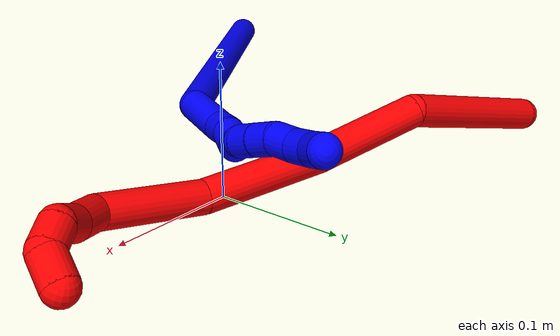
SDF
<sdf version="1.7">
 <world name="default">
  <model name="photoneo_s_sensor">
   <static>1</static>
   <pose>0 0 2 1.57079 1.57079 3.14159</pose>
   <link name="link">
    <inertial><mass>0.1</mass></inertial>
    <sensor name="sensor" type="depth">
     <update_rate>30</update_rate>
     <camera>
      <horizontal_fov>1.22</horizontal_fov>
      <image><width>1920</width><height>1200</height><format>B8G8R8</format></image>
      <clip><near>0.1</near><far>4</far></clip>
      <depth_camera><output>points</output></depth_camera>
     </camera>
     <plugin name="camera_plugin" filename="libgazebo_ros_depth_camera.so">
      <baseline>0.2</baseline>
      <alwaysOn>1</alwaysOn>
      <updateRate>0.0</updateRate>
      <cameraName>camera_ir</cameraName>
      <imageTopicName>/camera/color/image_raw</imageTopicName>
      <cameraInfoTopicName>/camera/color/camera_info</cameraInfoTopicName>
      <depthImageTopicName>/camera/depth/image_raw</depthImageTopicName>
      <depthImageCameraInfoTopicName>/camera/depth/camera_info</depthImageCameraInfoTopicName>
      <pointCloudTopicName>/camera/depth/points</pointCloudTopicName>
      <frameName>fr_optical</frameName>
      <pointCloudCutoff>0.1</pointCloudCutoff>
      <pointCloudCutoffMax>2.0</pointCloudCutoffMax>
      <distortionK1>0</distortionK1>
      <distortionK2>0</distortionK2>
      <distortionK3>0</distortionK3>
      <distortionT1>0</distortionT1>
      <distortionT2>0</distortionT2>
      <CxPrime>0</CxPrime>
      <Cx>0</Cx>
      <Cy>0</Cy>
      <focalLength>0</focalLength>
      <hackBaseline>0</hackBaseline>
     </plugin>
    </sensor>
   </link>
  </model>
  <model name="bin">
   <static>1</static>
   <link name="bottom">
    <collision name="collision-bottom">
     <pose>0 0 -0.01 0 -0 0</pose>
     <geometry><box><size>0.8 0.6 0.02</size></box></geometry>
     <surface>
      <friction><ode><mu>100</mu><mu2>100</mu2></ode></friction>
      <contact><collide_bitmask>65535</collide_bitmask></contact>
     </surface>
    </collision>
   </link>
   <link name="west_wall">
    <collision name="collision-west_wall">
     <pose>-0.41 0 0.1 0 -0 0</pose>
     <geometry><box><size>0.02 0.6 0.2</size></box></geometry>
     <surface>
      <friction><ode><mu>100</mu><mu2>100</mu2></ode></friction>
      <contact><collide_bitmask>65535</collide_bitmask></contact>
     </surface>
    </collision>
   </link>
   <link name="east_wall">
    <collision name="collision-east_wall">
     <pose>0.41 0 0.1 0 -0 0</pose>
     <geometry><box><size>0.02 0.6 0.2</size></box></geometry>
     <surface>
      <friction><ode><mu>100</mu><mu2>100</mu2></ode></friction>
      <contact><collide_bitmask>65535</collide_bitmask></contact>
     </surface>
    </collision>
   </link>
   <link name="south_wall">
    <collision name="collision-south_wall">
     <pose>0 -0.31 0.1 0 -0 0</pose>
     <geometry><box><size>0.8 0.02 0.2</size></box></geometry>
     <surface>
      <friction><ode><mu>100</mu><mu2>100</mu2></ode></friction>
      <contact><collide_bitmask>65535</collide_bitmask></contact>
     </surface>
    </collision>
   </link>
   <link name="north_wall">
    <collision name="collision-north_wall">
     <pose>0 0.31 0.1 0 -0 0</pose>
     <geometry><box><size>0.8 0.02 0.2</size></box></geometry>
     <surface>
      <friction><ode><mu>100</mu><mu2>100</mu2></ode></friction>
      <contact><collide_bitmask>65535</collide_bitmask></contact>
     </surface>
    </collision>
   </link>
  </model>
  <model name="1">
   <static>0</static>
   <link name="1">
    <collision name="collision-cylinder-e_1_1_4">
     <pose>-0.022932 0.050946 -0.133496 -2.77702 -0.159134 0.816521</pose>
     <geometry><cylinder><radius>0.0125</radius><length>0.289432</length></cylinder></geometry>
     <surface>
      <friction><ode><mu>1.16</mu><mu2>1.16</mu2><slip1>0</slip1><slip2>0</slip2></ode></friction>
      <contact><ode><kp>1e+06</kp><kd>1</kd><max_vel>0</max_vel><min_depth>0.001</min_depth></ode></contact>
     </surface>
    </collision>
    <visual name="visual-cylinder-e_1_1_4">
     <pose>-0.022932 0.050946 -0.133496 -2.77702 -0.159134 0.816521</pose>
     <geometry><cylinder><radius>0.0125</radius><length>0.289432</length></cylinder></geometry>
     <material><ambient>0 0 1 1</ambient></material>
    </visual>
    <collision name="collision-cylinder-e_2_4_5">
     <pose>-0.035477 0.109776 -0.286963 -2.76558 0.450612 -1.75595</pose>
     <geometry><cylinder><radius>0.0125</radius><length>0.047702</length></cylinder></geometry>
     <surface>
      <friction><ode><mu>1.16</mu><mu2>1.16</mu2><slip1>0</slip1><slip2>0</slip2></ode></friction>
      <contact><ode><kp>1e+06</kp><kd>1</kd><max_vel>0</max_vel><min_depth>0.001</min_depth></ode></contact>
     </surface>
    </collision>
    <visual name="visual-cylinder-e_2_4_5">
     <pose>-0.035477 0.109776 -0.286963 -2.76558 0.450612 -1.75595</pose>
     <geometry><cylinder><radius>0.0125</radius><length>0.047702</length></cylinder></geometry>
     <material><ambient>0 0 1 1</ambient></material>
    </visual>
    <collision name="collision-cylinder-e_3_5_6">
     <pose>-0.021818 0.11973 -0.316523 -2.92908 0.321829 -1.97892</pose>
     <geometry><cylinder><radius>0.0125</radius><length>0.020684</length></cylinder></geometry>
     <surface>
      <friction><ode><mu>1.16</mu><mu2>1.16</mu2><slip1>0</slip1><slip2>0</slip2></ode></friction>
      <contact><ode><kp>1e+06</kp><kd>1</kd><max_vel>0</max_vel><min_depth>0.001</min_depth></ode></contact>
     </surface>
    </collision>
    <visual name="visual-cylinder-e_3_5_6">
     <pose>-0.021818 0.11973 -0.316523 -2.92908 0.321829 -1.97892</pose>
     <geometry><cylinder><radius>0.0125</radius><length>0.020684</length></cylinder></geometry>
     <material><ambient>0 0 1 1</ambient></material>
    </visual>
    <collision name="collision-cylinder-e_4_6_7">
     <pose>-0.016069 0.126572 -0.335562 -2.67384 0.229915 -0.902623</pose>
     <geometry><cylinder><radius>0.0125</radius><length>0.021742</length></cylinder></geometry>
     <surface>
      <friction><ode><mu>1.16</mu><mu2>1.16</mu2><slip1>0</slip1><slip2>0</slip2></ode></friction>
      <contact><ode><kp>1e+06</kp><kd>1</kd><max_vel>0</max_vel><min_depth>0.001</min_depth></ode></contact>
     </surface>
    </collision>
    <visual name="visual-cylinder-e_4_6_7">
     <pose>-0.016069 0.126572 -0.335562 -2.67384 0.229915 -0.902623</pose>
     <geometry><cylinder><radius>0.0125</radius><length>0.021742</length></cylinder></geometry>
     <material><ambient>0 0 1 1</ambient></material>
    </visual>
    <collision name="collision-cylinder-e_5_7_8">
     <pose>-0.012726 0.129906 -0.354961 2.99803 0.085898 1.07739</pose>
     <geometry><cylinder><radius>0.0125</radius><length>0.020183</length></cylinder></geometry>
     <surface>
      <friction><ode><mu>1.16</mu><mu2>1.16</mu2><slip1>0</slip1><slip2>0</slip2></ode></friction>
      <contact><ode><kp>1e+06</kp><kd>1</kd><max_vel>0</max_vel><min_depth>0.001</min_depth></ode></contact>
     </surface>
    </collision>
    <visual name="visual-cylinder-e_5_7_8">
     <pose>-0.012726 0.129906 -0.354961 2.99803 0.085898 1.07739</pose>
     <geometry><cylinder><radius>0.0125</radius><length>0.020183</length></cylinder></geometry>
     <material><ambient>0 0 1 1</ambient></material>
    </visual>
    <collision name="collision-cylinder-e_6_8_9">
     <pose>-0.006566 0.127258 -0.373424 3.00046 0.551915 2.65237</pose>
     <geometry><cylinder><radius>0.0125</radius><length>0.020194</length></cylinder></geometry>
     <surface>
      <friction><ode><mu>1.16</mu><mu2>1.16</mu2><slip1>0</slip1><slip2>0</slip2></ode></friction>
      <contact><ode><kp>1e+06</kp><kd>1</kd><max_vel>0</max_vel><min_depth>0.001</min_depth></ode></contact>
     </surface>
    </collision>
    <visual name="visual-cylinder-e_6_8_9">
     <pose>-0.006566 0.127258 -0.373424 3.00046 0.551915 2.65237</pose>
     <geometry><cylinder><radius>0.0125</radius><length>0.020194</length></cylinder></geometry>
     <material><ambient>0 0 1 1</ambient></material>
    </visual>
    <collision name="collision-cylinder-e_7_9_10">
     <pose>0.0045 0.124836 -0.390039 2.99302 0.61375 2.68025</pose>
     <geometry><cylinder><radius>0.0125</radius><length>0.020044</length></cylinder></geometry>
     <surface>
      <friction><ode><mu>1.16</mu><mu2>1.16</mu2><slip1>0</slip1><slip2>0</slip2></ode></friction>
      <contact><ode><kp>1e+06</kp><kd>1</kd><max_vel>0</max_vel><min_depth>0.001</min_depth></ode></contact>
     </surface>
    </collision>
    <visual name="visual-cylinder-e_7_9_10">
     <pose>0.0045 0.124836 -0.390039 2.99302 0.61375 2.68025</pose>
     <geometry><cylinder><radius>0.0125</radius><length>0.020044</length></cylinder></geometry>
     <material><ambient>0 0 1 1</ambient></material>
    </visual>
    <collision name="collision-cylinder-e_8_10_11">
     <pose>0.016633 0.125259 -0.405693 -2.92821 0.688797 -2.56128</pose>
     <geometry><cylinder><radius>0.0125</radius><length>0.020017</length></cylinder></geometry>
     <surface>
      <friction><ode><mu>1.16</mu><mu2>1.16</mu2><slip1>0</slip1><slip2>0</slip2></ode></friction>
      <contact><ode><kp>1e+06</kp><kd>1</kd><max_vel>0</max_vel><min_depth>0.001</min_depth></ode></contact>
     </surface>
    </collision>
    <visual name="visual-cylinder-e_8_10_11">
     <pose>0.016633 0.125259 -0.405693 -2.92821 0.688797 -2.56128</pose>
     <geometry><cylinder><radius>0.0125</radius><length>0.020017</length></cylinder></geometry>
     <material><ambient>0 0 1 1</ambient></material>
    </visual>
    <collision name="collision-cylinder-e_9_11_12">
     <pose>0.027886 0.127547 -0.421943 -3.06688 0.511095 -2.85742</pose>
     <geometry><cylinder><radius>0.0125</radius><length>0.020002</length></cylinder></geometry>
     <surface>
      <friction><ode><mu>1.16</mu><mu2>1.16</mu2><slip1>0</slip1><slip2>0</slip2></ode></friction>
      <contact><ode><kp>1e+06</kp><kd>1</kd><max_vel>0</max_vel><min_depth>0.001</min_depth></ode></contact>
     </surface>
    </collision>
    <visual name="visual-cylinder-e_9_11_12">
     <pose>0.027886 0.127547 -0.421943 -3.06688 0.511095 -2.85742</pose>
     <geometry><cylinder><radius>0.0125</radius><length>0.020002</length></cylinder></geometry>
     <material><ambient>0 0 1 1</ambient></material>
    </visual>
    <collision name="collision-cylinder-e_10_12_2">
     <pose>0.034927 0.128348 -0.440407 -3.1262 0.216591 -3.00026</pose>
     <geometry><cylinder><radius>0.0125</radius><length>0.020001</length></cylinder></geometry>
     <surface>
      <friction><ode><mu>1.16</mu><mu2>1.16</mu2><slip1>0</slip1><slip2>0</slip2></ode></friction>
      <contact><ode><kp>1e+06</kp><kd>1</kd><max_vel>0</max_vel><min_depth>0.001</min_depth></ode></contact>
     </surface>
    </collision>
    <visual name="visual-cylinder-e_10_12_2">
     <pose>0.034927 0.128348 -0.440407 -3.1262 0.216591 -3.00026</pose>
     <geometry><cylinder><radius>0.0125</radius><length>0.020001</length></cylinder></geometry>
     <material><ambient>0 0 1 1</ambient></material>
    </visual>
    <collision name="collision-sphere-2">
     <pose>0.037076 0.128498 -0.450172 0 -0 0</pose>
     <geometry><sphere><radius>0.0125</radius></sphere></geometry>
     <surface>
      <friction><ode><mu>1.16</mu><mu2>1.16</mu2><slip1>0</slip1><slip2>0</slip2></ode></friction>
      <contact><ode><kp>1e+06</kp><kd>1</kd><max_vel>0</max_vel><min_depth>0.001</min_depth></ode></contact>
     </surface>
    </collision>
    <visual name="visual-sphere-2">
     <pose>0.037076 0.128498 -0.450172 0 -0 0</pose>
     <geometry><sphere><radius>0.0125</radius></sphere></geometry>
     <material><ambient>0 0 1 1</ambient></material>
    </visual>
    <collision name="collision-sphere-12">
     <pose>0.032778 0.128198 -0.430641 0 -0 0</pose>
     <geometry><sphere><radius>0.0125</radius></sphere></geometry>
     <surface>
      <friction><ode><mu>1.16</mu><mu2>1.16</mu2><slip1>0</slip1><slip2>0</slip2></ode></friction>
      <contact><ode><kp>1e+06</kp><kd>1</kd><max_vel>0</max_vel><min_depth>0.001</min_depth></ode></contact>
     </surface>
    </collision>
    <visual name="visual-sphere-12">
     <pose>0.032778 0.128198 -0.430641 0 -0 0</pose>
     <geometry><sphere><radius>0.0125</radius></sphere></geometry>
     <material><ambient>0 0 1 1</ambient></material>
    </visual>
    <collision name="collision-sphere-11">
     <pose>0.022994 0.126896 -0.413244 0 -0 0</pose>
     <geometry><sphere><radius>0.0125</radius></sphere></geometry>
     <surface>
      <friction><ode><mu>1.16</mu><mu2>1.16</mu2><slip1>0</slip1><slip2>0</slip2></ode></friction>
      <contact><ode><kp>1e+06</kp><kd>1</kd><max_vel>0</max_vel><min_depth>0.001</min_depth></ode></contact>
     </surface>
    </collision>
    <visual name="visual-sphere-11">
     <pose>0.022994 0.126896 -0.413244 0 -0 0</pose>
     <geometry><sphere><radius>0.0125</radius></sphere></geometry>
     <material><ambient>0 0 1 1</ambient></material>
    </visual>
    <collision name="collision-sphere-10">
     <pose>0.010272 0.123623 -0.398141 0 -0 0</pose>
     <geometry><sphere><radius>0.0125</radius></sphere></geometry>
     <surface>
      <friction><ode><mu>1.16</mu><mu2>1.16</mu2><slip1>0</slip1><slip2>0</slip2></ode></friction>
      <contact><ode><kp>1e+06</kp><kd>1</kd><max_vel>0</max_vel><min_depth>0.001</min_depth></ode></contact>
     </surface>
    </collision>
    <visual name="visual-sphere-10">
     <pose>0.010272 0.123623 -0.398141 0 -0 0</pose>
     <geometry><sphere><radius>0.0125</radius></sphere></geometry>
     <material><ambient>0 0 1 1</ambient></material>
    </visual>
    <collision name="collision-sphere-9">
     <pose>-0.001272 0.126048 -0.381936 0 -0 0</pose>
     <geometry><sphere><radius>0.0125</radius></sphere></geometry>
     <surface>
      <friction><ode><mu>1.16</mu><mu2>1.16</mu2><slip1>0</slip1><slip2>0</slip2></ode></friction>
      <contact><ode><kp>1e+06</kp><kd>1</kd><max_vel>0</max_vel><min_depth>0.001</min_depth></ode></contact>
     </surface>
    </collision>
    <visual name="visual-sphere-9">
     <pose>-0.001272 0.126048 -0.381936 0 -0 0</pose>
     <geometry><sphere><radius>0.0125</radius></sphere></geometry>
     <material><ambient>0 0 1 1</ambient></material>
    </visual>
    <collision name="collision-sphere-4">
     <pose>-0.045864 0.101892 -0.266993 0 -0 0</pose>
     <geometry><sphere><radius>0.0125</radius></sphere></geometry>
     <surface>
      <friction><ode><mu>1.16</mu><mu2>1.16</mu2><slip1>0</slip1><slip2>0</slip2></ode></friction>
      <contact><ode><kp>1e+06</kp><kd>1</kd><max_vel>0</max_vel><min_depth>0.001</min_depth></ode></contact>
     </surface>
    </collision>
    <visual name="visual-sphere-4">
     <pose>-0.045864 0.101892 -0.266993 0 -0 0</pose>
     <geometry><sphere><radius>0.0125</radius></sphere></geometry>
     <material><ambient>0 0 1 1</ambient></material>
    </visual>
    <collision name="collision-sphere-1">
     <geometry><sphere><radius>0.0125</radius></sphere></geometry>
     <surface>
      <friction><ode><mu>1.16</mu><mu2>1.16</mu2><slip1>0</slip1><slip2>0</slip2></ode></friction>
      <contact><ode><kp>1e+06</kp><kd>1</kd><max_vel>0</max_vel><min_depth>0.001</min_depth></ode></contact>
     </surface>
    </collision>
    <visual name="visual-sphere-1">
     <geometry><sphere><radius>0.0125</radius></sphere></geometry>
     <material><ambient>0 0 1 1</ambient></material>
    </visual>
    <collision name="collision-sphere-8">
     <pose>-0.01186 0.128467 -0.364912 0 -0 0</pose>
     <geometry><sphere><radius>0.0125</radius></sphere></geometry>
     <surface>
      <friction><ode><mu>1.16</mu><mu2>1.16</mu2><slip1>0</slip1><slip2>0</slip2></ode></friction>
      <contact><ode><kp>1e+06</kp><kd>1</kd><max_vel>0</max_vel><min_depth>0.001</min_depth></ode></contact>
     </surface>
    </collision>
    <visual name="visual-sphere-8">
     <pose>-0.01186 0.128467 -0.364912 0 -0 0</pose>
     <geometry><sphere><radius>0.0125</radius></sphere></geometry>
     <material><ambient>0 0 1 1</ambient></material>
    </visual>
    <collision name="collision-sphere-5">
     <pose>-0.025089 0.117661 -0.306933 0 -0 0</pose>
     <geometry><sphere><radius>0.0125</radius></sphere></geometry>
     <surface>
      <friction><ode><mu>1.16</mu><mu2>1.16</mu2><slip1>0</slip1><slip2>0</slip2></ode></friction>
      <contact><ode><kp>1e+06</kp><kd>1</kd><max_vel>0</max_vel><min_depth>0.001</min_depth></ode></contact>
     </surface>
    </collision>
    <visual name="visual-sphere-5">
     <pose>-0.025089 0.117661 -0.306933 0 -0 0</pose>
     <geometry><sphere><radius>0.0125</radius></sphere></geometry>
     <material><ambient>0 0 1 1</ambient></material>
    </visual>
    <collision name="collision-sphere-6">
     <pose>-0.018547 0.121799 -0.326114 0 -0 0</pose>
     <geometry><sphere><radius>0.0125</radius></sphere></geometry>
     <surface>
      <friction><ode><mu>1.16</mu><mu2>1.16</mu2><slip1>0</slip1><slip2>0</slip2></ode></friction>
      <contact><ode><kp>1e+06</kp><kd>1</kd><max_vel>0</max_vel><min_depth>0.001</min_depth></ode></contact>
     </surface>
    </collision>
    <visual name="visual-sphere-6">
     <pose>-0.018547 0.121799 -0.326114 0 -0 0</pose>
     <geometry><sphere><radius>0.0125</radius></sphere></geometry>
     <material><ambient>0 0 1 1</ambient></material>
    </visual>
    <collision name="collision-sphere-7">
     <pose>-0.013592 0.131344 -0.34501 0 -0 0</pose>
     <geometry><sphere><radius>0.0125</radius></sphere></geometry>
     <surface>
      <friction><ode><mu>1.16</mu><mu2>1.16</mu2><slip1>0</slip1><slip2>0</slip2></ode></friction>
      <contact><ode><kp>1e+06</kp><kd>1</kd><max_vel>0</max_vel><min_depth>0.001</min_depth></ode></contact>
     </surface>
    </collision>
    <visual name="visual-sphere-7">
     <pose>-0.013592 0.131344 -0.34501 0 -0 0</pose>
     <geometry><sphere><radius>0.0125</radius></sphere></geometry>
     <material><ambient>0 0 1 1</ambient></material>
    </visual>
    <inertial>
     <pose>-0.01568 0.08106 -0.228123 0 -0 0</pose>
     <mass>0.5</mass>
     <inertia>
      <ixx>0.002821</ixx>
      <ixy>0</ixy>
      <ixz>0</ixz>
      <iyy>0.000254</iyy>
      <iyz>0</iyz>
      <izz>-0.000442</izz>
     </inertia>
    </inertial>
   </link>
   <pose>-0.319661 -0.262077 0.012492 -1.95477 0.185351 2.30877</pose>
  </model>
  <model name="2">
   <static>0</static>
   <link name="2">
    <collision name="collision-cylinder-e_1_1_4">
     <pose>0.067022 -0.017143 0.006662 1.20014 1.30297 0.961819</pose>
     <geometry><cylinder><radius>0.0125</radius><length>0.138999</length></cylinder></geometry>
     <surface>
      <friction><ode><mu>1.16</mu><mu2>1.16</mu2><slip1>0</slip1><slip2>0</slip2></ode></friction>
      <contact><ode><kp>1e+06</kp><kd>1</kd><max_vel>0</max_vel><min_depth>0.001</min_depth></ode></contact>
     </surface>
    </collision>
    <visual name="visual-cylinder-e_1_1_4">
     <pose>0.067022 -0.017143 0.006662 1.20014 1.30297 0.961819</pose>
     <geometry><cylinder><radius>0.0125</radius><length>0.138999</length></cylinder></geometry>
     <material><ambient>1 0 0 1</ambient></material>
    </visual>
    <collision name="collision-cylinder-e_2_4_5">
     <pose>0.169961 -0.045773 -0.005304 2.58901 1.02355 2.20663</pose>
     <geometry><cylinder><radius>0.0125</radius><length>0.084119</length></cylinder></geometry>
     <surface>
      <friction><ode><mu>1.16</mu><mu2>1.16</mu2><slip1>0</slip1><slip2>0</slip2></ode></friction>
      <contact><ode><kp>1e+06</kp><kd>1</kd><max_vel>0</max_vel><min_depth>0.001</min_depth></ode></contact>
     </surface>
    </collision>
    <visual name="visual-cylinder-e_2_4_5">
     <pose>0.169961 -0.045773 -0.005304 2.58901 1.02355 2.20663</pose>
     <geometry><cylinder><radius>0.0125</radius><length>0.084119</length></cylinder></geometry>
     <material><ambient>1 0 0 1</ambient></material>
    </visual>
    <collision name="collision-cylinder-e_3_5_6">
     <pose>0.247868 -0.070905 -0.038327 2.38294 1.12952 2.01842</pose>
     <geometry><cylinder><radius>0.0125</radius><length>0.092877</length></cylinder></geometry>
     <surface>
      <friction><ode><mu>1.16</mu><mu2>1.16</mu2><slip1>0</slip1><slip2>0</slip2></ode></friction>
      <contact><ode><kp>1e+06</kp><kd>1</kd><max_vel>0</max_vel><min_depth>0.001</min_depth></ode></contact>
     </surface>
    </collision>
    <visual name="visual-cylinder-e_3_5_6">
     <pose>0.247868 -0.070905 -0.038327 2.38294 1.12952 2.01842</pose>
     <geometry><cylinder><radius>0.0125</radius><length>0.092877</length></cylinder></geometry>
     <material><ambient>1 0 0 1</ambient></material>
    </visual>
    <collision name="collision-cylinder-e_4_6_7">
     <pose>0.328749 -0.096379 -0.054747 1.74035 1.27147 1.43767</pose>
     <geometry><cylinder><radius>0.0125</radius><length>0.081401</length></cylinder></geometry>
     <surface>
      <friction><ode><mu>1.16</mu><mu2>1.16</mu2><slip1>0</slip1><slip2>0</slip2></ode></friction>
      <contact><ode><kp>1e+06</kp><kd>1</kd><max_vel>0</max_vel><min_depth>0.001</min_depth></ode></contact>
     </surface>
    </collision>
    <visual name="visual-cylinder-e_4_6_7">
     <pose>0.328749 -0.096379 -0.054747 1.74035 1.27147 1.43767</pose>
     <geometry><cylinder><radius>0.0125</radius><length>0.081401</length></cylinder></geometry>
     <material><ambient>1 0 0 1</ambient></material>
    </visual>
    <collision name="collision-cylinder-e_5_7_8">
     <pose>0.382092 -0.103239 -0.052442 -0.854153 1.1429 -0.569361</pose>
     <geometry><cylinder><radius>0.0125</radius><length>0.031769</length></cylinder></geometry>
     <surface>
      <friction><ode><mu>1.16</mu><mu2>1.16</mu2><slip1>0</slip1><slip2>0</slip2></ode></friction>
      <contact><ode><kp>1e+06</kp><kd>1</kd><max_vel>0</max_vel><min_depth>0.001</min_depth></ode></contact>
     </surface>
    </collision>
    <visual name="visual-cylinder-e_5_7_8">
     <pose>0.382092 -0.103239 -0.052442 -0.854153 1.1429 -0.569361</pose>
     <geometry><cylinder><radius>0.0125</radius><length>0.031769</length></cylinder></geometry>
     <material><ambient>1 0 0 1</ambient></material>
    </visual>
    <collision name="collision-cylinder-e_6_8_9">
     <pose>0.407235 -0.094986 -0.042262 -0.511318 1.01041 -0.287137</pose>
     <geometry><cylinder><radius>0.0125</radius><length>0.025243</length></cylinder></geometry>
     <surface>
      <friction><ode><mu>1.16</mu><mu2>1.16</mu2><slip1>0</slip1><slip2>0</slip2></ode></friction>
      <contact><ode><kp>1e+06</kp><kd>1</kd><max_vel>0</max_vel><min_depth>0.001</min_depth></ode></contact>
     </surface>
    </collision>
    <visual name="visual-cylinder-e_6_8_9">
     <pose>0.407235 -0.094986 -0.042262 -0.511318 1.01041 -0.287137</pose>
     <geometry><cylinder><radius>0.0125</radius><length>0.025243</length></cylinder></geometry>
     <material><ambient>1 0 0 1</ambient></material>
    </visual>
    <collision name="collision-cylinder-e_7_9_10">
     <pose>0.42667 -0.085641 -0.038707 -1.93278 0.932846 -1.25986</pose>
     <geometry><cylinder><radius>0.0125</radius><length>0.021769</length></cylinder></geometry>
     <surface>
      <friction><ode><mu>1.16</mu><mu2>1.16</mu2><slip1>0</slip1><slip2>0</slip2></ode></friction>
      <contact><ode><kp>1e+06</kp><kd>1</kd><max_vel>0</max_vel><min_depth>0.001</min_depth></ode></contact>
     </surface>
    </collision>
    <visual name="visual-cylinder-e_7_9_10">
     <pose>0.42667 -0.085641 -0.038707 -1.93278 0.932846 -1.25986</pose>
     <geometry><cylinder><radius>0.0125</radius><length>0.021769</length></cylinder></geometry>
     <material><ambient>1 0 0 1</ambient></material>
    </visual>
    <collision name="collision-cylinder-e_8_10_2">
     <pose>0.437637 -0.068612 -0.045085 -1.92711 0.187806 -0.269449</pose>
     <geometry><cylinder><radius>0.0125</radius><length>0.023823</length></cylinder></geometry>
     <surface>
      <friction><ode><mu>1.16</mu><mu2>1.16</mu2><slip1>0</slip1><slip2>0</slip2></ode></friction>
      <contact><ode><kp>1e+06</kp><kd>1</kd><max_vel>0</max_vel><min_depth>0.001</min_depth></ode></contact>
     </surface>
    </collision>
    <visual name="visual-cylinder-e_8_10_2">
     <pose>0.437637 -0.068612 -0.045085 -1.92711 0.187806 -0.269449</pose>
     <geometry><cylinder><radius>0.0125</radius><length>0.023823</length></cylinder></geometry>
     <material><ambient>1 0 0 1</ambient></material>
    </visual>
    <collision name="collision-sphere-2">
     <pose>0.439861 -0.057645 -0.049167 0 -0 0</pose>
     <geometry><sphere><radius>0.0125</radius></sphere></geometry>
     <surface>
      <friction><ode><mu>1.16</mu><mu2>1.16</mu2><slip1>0</slip1><slip2>0</slip2></ode></friction>
      <contact><ode><kp>1e+06</kp><kd>1</kd><max_vel>0</max_vel><min_depth>0.001</min_depth></ode></contact>
     </surface>
    </collision>
    <visual name="visual-sphere-2">
     <pose>0.439861 -0.057645 -0.049167 0 -0 0</pose>
     <geometry><sphere><radius>0.0125</radius></sphere></geometry>
     <material><ambient>1 0 0 1</ambient></material>
    </visual>
    <collision name="collision-sphere-10">
     <pose>0.435413 -0.079579 -0.041003 0 -0 0</pose>
     <geometry><sphere><radius>0.0125</radius></sphere></geometry>
     <surface>
      <friction><ode><mu>1.16</mu><mu2>1.16</mu2><slip1>0</slip1><slip2>0</slip2></ode></friction>
      <contact><ode><kp>1e+06</kp><kd>1</kd><max_vel>0</max_vel><min_depth>0.001</min_depth></ode></contact>
     </surface>
    </collision>
    <visual name="visual-sphere-10">
     <pose>0.435413 -0.079579 -0.041003 0 -0 0</pose>
     <geometry><sphere><radius>0.0125</radius></sphere></geometry>
     <material><ambient>1 0 0 1</ambient></material>
    </visual>
    <collision name="collision-sphere-9">
     <pose>0.417926 -0.091703 -0.036412 0 -0 0</pose>
     <geometry><sphere><radius>0.0125</radius></sphere></geometry>
     <surface>
      <friction><ode><mu>1.16</mu><mu2>1.16</mu2><slip1>0</slip1><slip2>0</slip2></ode></friction>
      <contact><ode><kp>1e+06</kp><kd>1</kd><max_vel>0</max_vel><min_depth>0.001</min_depth></ode></contact>
     </surface>
    </collision>
    <visual name="visual-sphere-9">
     <pose>0.417926 -0.091703 -0.036412 0 -0 0</pose>
     <geometry><sphere><radius>0.0125</radius></sphere></geometry>
     <material><ambient>1 0 0 1</ambient></material>
    </visual>
    <collision name="collision-sphere-4">
     <pose>0.134044 -0.034286 0.013324 0 -0 0</pose>
     <geometry><sphere><radius>0.0125</radius></sphere></geometry>
     <surface>
      <friction><ode><mu>1.16</mu><mu2>1.16</mu2><slip1>0</slip1><slip2>0</slip2></ode></friction>
      <contact><ode><kp>1e+06</kp><kd>1</kd><max_vel>0</max_vel><min_depth>0.001</min_depth></ode></contact>
     </surface>
    </collision>
    <visual name="visual-sphere-4">
     <pose>0.134044 -0.034286 0.013324 0 -0 0</pose>
     <geometry><sphere><radius>0.0125</radius></sphere></geometry>
     <material><ambient>1 0 0 1</ambient></material>
    </visual>
    <collision name="collision-sphere-1">
     <geometry><sphere><radius>0.0125</radius></sphere></geometry>
     <surface>
      <friction><ode><mu>1.16</mu><mu2>1.16</mu2><slip1>0</slip1><slip2>0</slip2></ode></friction>
      <contact><ode><kp>1e+06</kp><kd>1</kd><max_vel>0</max_vel><min_depth>0.001</min_depth></ode></contact>
     </surface>
    </collision>
    <visual name="visual-sphere-1">
     <geometry><sphere><radius>0.0125</radius></sphere></geometry>
     <material><ambient>1 0 0 1</ambient></material>
    </visual>
    <collision name="collision-sphere-8">
     <pose>0.396544 -0.098269 -0.048113 0 -0 0</pose>
     <geometry><sphere><radius>0.0125</radius></sphere></geometry>
     <surface>
      <friction><ode><mu>1.16</mu><mu2>1.16</mu2><slip1>0</slip1><slip2>0</slip2></ode></friction>
      <contact><ode><kp>1e+06</kp><kd>1</kd><max_vel>0</max_vel><min_depth>0.001</min_depth></ode></contact>
     </surface>
    </collision>
    <visual name="visual-sphere-8">
     <pose>0.396544 -0.098269 -0.048113 0 -0 0</pose>
     <geometry><sphere><radius>0.0125</radius></sphere></geometry>
     <material><ambient>1 0 0 1</ambient></material>
    </visual>
    <collision name="collision-sphere-5">
     <pose>0.205878 -0.05726 -0.023932 0 -0 0</pose>
     <geometry><sphere><radius>0.0125</radius></sphere></geometry>
     <surface>
      <friction><ode><mu>1.16</mu><mu2>1.16</mu2><slip1>0</slip1><slip2>0</slip2></ode></friction>
      <contact><ode><kp>1e+06</kp><kd>1</kd><max_vel>0</max_vel><min_depth>0.001</min_depth></ode></contact>
     </surface>
    </collision>
    <visual name="visual-sphere-5">
     <pose>0.205878 -0.05726 -0.023932 0 -0 0</pose>
     <geometry><sphere><radius>0.0125</radius></sphere></geometry>
     <material><ambient>1 0 0 1</ambient></material>
    </visual>
    <collision name="collision-sphere-6">
     <pose>0.289858 -0.08455 -0.052721 0 -0 0</pose>
     <geometry><sphere><radius>0.0125</radius></sphere></geometry>
     <surface>
      <friction><ode><mu>1.16</mu><mu2>1.16</mu2><slip1>0</slip1><slip2>0</slip2></ode></friction>
      <contact><ode><kp>1e+06</kp><kd>1</kd><max_vel>0</max_vel><min_depth>0.001</min_depth></ode></contact>
     </surface>
    </collision>
    <visual name="visual-sphere-6">
     <pose>0.289858 -0.08455 -0.052721 0 -0 0</pose>
     <geometry><sphere><radius>0.0125</radius></sphere></geometry>
     <material><ambient>1 0 0 1</ambient></material>
    </visual>
    <collision name="collision-sphere-7">
     <pose>0.36764 -0.108209 -0.056772 0 -0 0</pose>
     <geometry><sphere><radius>0.0125</radius></sphere></geometry>
     <surface>
      <friction><ode><mu>1.16</mu><mu2>1.16</mu2><slip1>0</slip1><slip2>0</slip2></ode></friction>
      <contact><ode><kp>1e+06</kp><kd>1</kd><max_vel>0</max_vel><min_depth>0.001</min_depth></ode></contact>
     </surface>
    </collision>
    <visual name="visual-sphere-7">
     <pose>0.36764 -0.108209 -0.056772 0 -0 0</pose>
     <geometry><sphere><radius>0.0125</radius></sphere></geometry>
     <material><ambient>1 0 0 1</ambient></material>
    </visual>
    <inertial>
     <pose>0.231054 -0.059681 -0.024372 0 -0 0</pose>
     <mass>0.5</mass>
     <inertia>
      <ixx>0.000157</ixx>
      <ixy>0</ixy>
      <ixz>0</ixz>
      <iyy>0.00048</iyy>
      <iyz>0</iyz>
      <izz>-0.000286</izz>
     </inertia>
    </inertial>
   </link>
   <pose>-0.265641 0.09647 0.011497 -0.354569 -0.069166 0.027793</pose>
  </model>
 </world>
</sdf>
